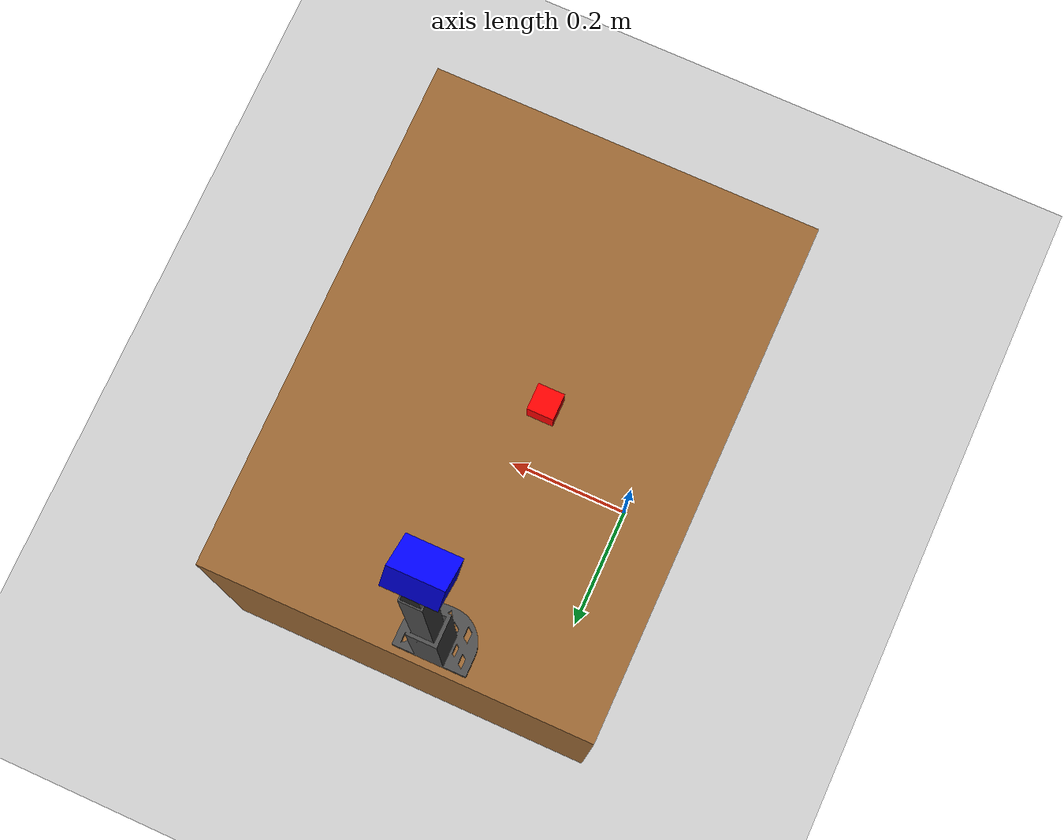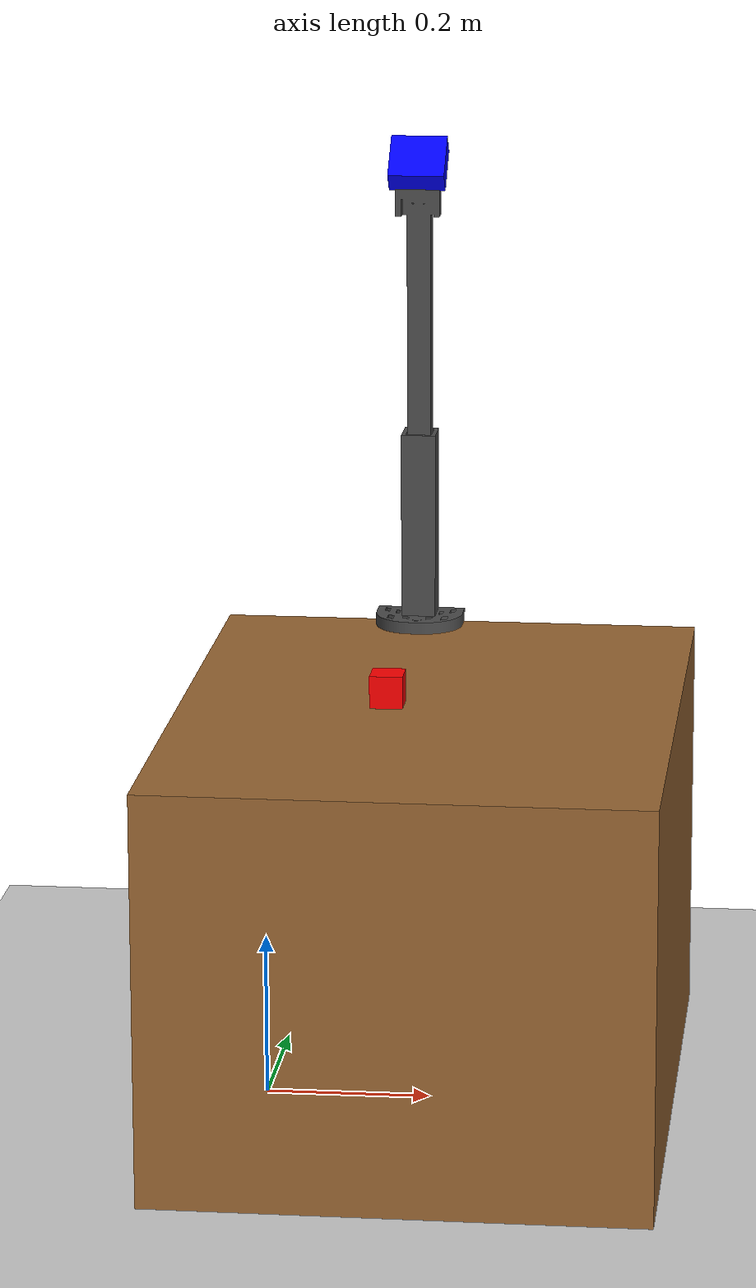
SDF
<?xml version="1.0" ?>
<sdf version="1.8">
  <world name="so101_world">
    <physics name="1ms" type="ignored">
      <max_step_size>0.001</max_step_size>
      <real_time_factor>1.0</real_time_factor>
    </physics>
    <plugin filename="ignition-gazebo-physics-system" name="ignition::gazebo::systems::Physics"></plugin>
    <plugin filename="ignition-gazebo-user-commands-system" name="ignition::gazebo::systems::UserCommands"></plugin>
    <plugin filename="ignition-gazebo-scene-broadcaster-system" name="ignition::gazebo::systems::SceneBroadcaster"></plugin>

    <plugin filename="ignition-gazebo-sensors-system" name="ignition::gazebo::systems::Sensors">
      <render_engine>ogre2</render_engine>
    </plugin>

    <light type="directional" name="sun">
      <cast_shadows>true</cast_shadows>
      <pose>0 0 10 0 0 0</pose>
      <diffuse>0.8 0.8 0.8 1</diffuse>
      <specular>0.2 0.2 0.2 1</specular>
      <direction>-0.5 0.1 -0.9</direction>
    </light>

    <model name="ground_plane">
      <static>true</static>
      <pose>0 0 0 0 0 0</pose>
      <link name="link">
        <collision name="collision">
          <geometry><plane><normal>0 0 1</normal><size>100 100</size></plane></geometry>
        </collision>
        <visual name="visual">
          <geometry><plane><normal>0 0 1</normal><size>100 100</size></plane></geometry>
          <material><ambient>0.8 0.8 0.8 1</ambient><diffuse>0.8 0.8 0.8 1</diffuse></material>
        </visual>
      </link>
    </model>

    <model name="table">
      <static>true</static>
      <pose>0.2 0 0.25 0 0 0</pose>
      <link name="link">
        <collision name="collision">
          <geometry><box><size>0.6 0.8 0.5</size></box></geometry>
        </collision>
        <visual name="visual">
          <geometry><box><size>0.6 0.8 0.5</size></box></geometry>
          <material><ambient>0.6 0.4 0.2 1</ambient><diffuse>0.6 0.4 0.2 1</diffuse></material>
        </visual>
      </link>
    </model>

    <model name="red_block">
      <pose>0.15 0 0.52 0 0 0</pose>
      <link name="link">
        <inertial>
          <mass>0.05</mass>
          <inertia>
            <ixx>0.00001</ixx>
            <iyy>0.00001</iyy>
            <izz>0.00001</izz>
          </inertia>
        </inertial>
        <collision name="collision">
          <geometry>
            <box><size>0.04 0.04 0.04</size></box>
          </geometry>
          <surface>
            <friction>
              <ode>
                <mu>1.0</mu>
                <mu2>1.0</mu2>
              </ode>
            </friction>
          </surface>
        </collision>
        <visual name="visual">
          <geometry>
            <box><size>0.04 0.04 0.04</size></box>
          </geometry>
          <material>
            <ambient>1 0 0 1</ambient>
            <diffuse>1 0 0 1</diffuse>
            <specular>0.1 0.1 0.1 1</specular>
          </material>
        </visual>
      </link>
    </model>

    <model name="camera_stand">
      <static>true</static> <pose>0.15 0.35 0.52 -1.57 0 -3.14</pose>
      <link name='camera_stand_link'>
        <inertial>
            <mass>1</mass>
            <inertia>
                <ixx>0.043333</ixx>
                <ixy>0</ixy>
                <ixz>0</ixz>
                <iyy>0.043333</iyy>
                <iyz>0</iyz>
                <izz>0.08</izz>
            </inertia>
        </inertial>
        <collision name='collision'>
            <geometry>
                <mesh>
                    <scale>0.001 0.001 0.001</scale>
                    <uri>camera_case.stl</uri>
                </mesh>
            </geometry>
        </collision>
        <visual name='visual'>
            <geometry>
                <mesh>
                    <scale>0.001 0.001 0.001</scale>
                    <uri>camera_case.stl</uri>
                </mesh>
            </geometry>
            <material>
              <ambient>0.3 0.3 0.3 1</ambient>
              <diffuse>0.3 0.3 0.3 1</diffuse>
            </material>
        </visual>
      </link>
    </model>

    <model name="camera">
      <static>true</static>
      <pose>0.15 0.35 1.1 0 0.75 -1.5708</pose>
      <link name="camera_link">
        <visual name="camera_visual">
          <geometry>
            <box><size>0.063 0.07 0.03</size></box>
          </geometry>
          <material>
            <diffuse>0 0 1 1</diffuse>
            <ambient>0 0 1 1</ambient>
          </material>
        </visual>
        <sensor name="camera_sensor" type="camera">
          <camera>
            <camera_info_topic>camera_info</camera_info_topic>
            <horizontal_fov>1.047</horizontal_fov>
            <image>
              <width>640</width>
              <height>480</height>
              <format>R8G8B8</format>
            </image>
            <clip>
              <near>0.1</near>
              <far>100</far>
            </clip>
          </camera>
          <topic>/camera_sensor</topic>
          <always_on>1</always_on>
          <update_rate>30</update_rate>
          <visualize>true</visualize>
        </sensor>
      </link>
    </model>

  </world>
</sdf>
